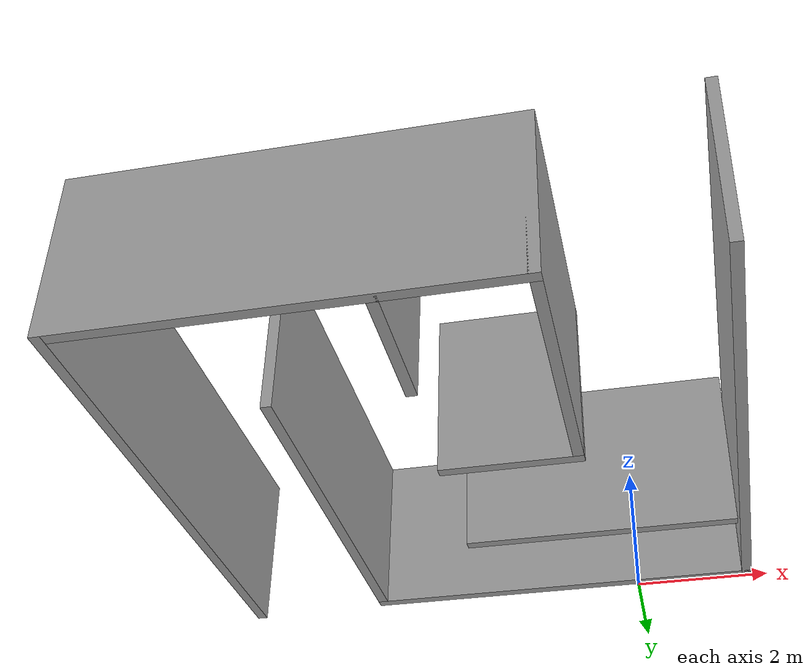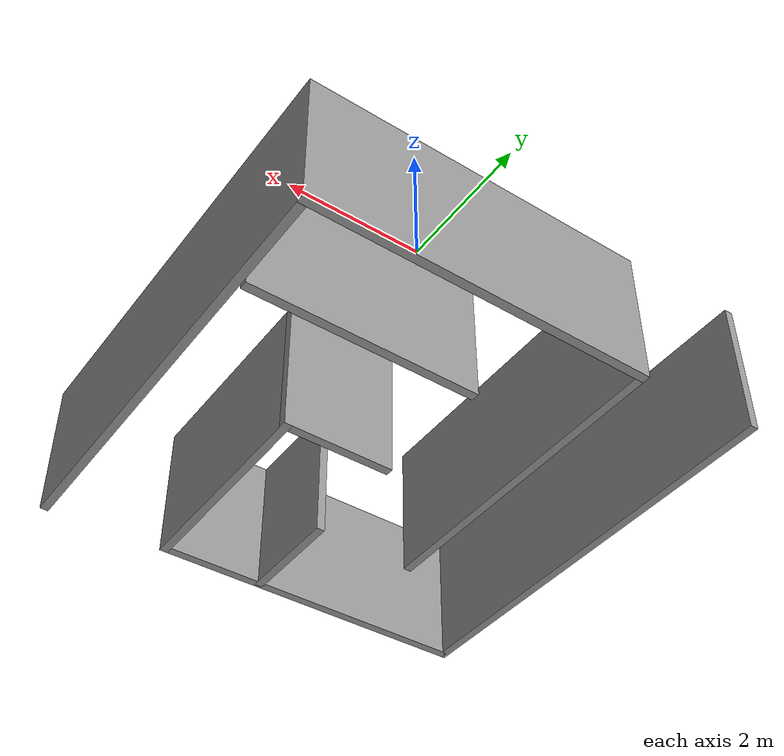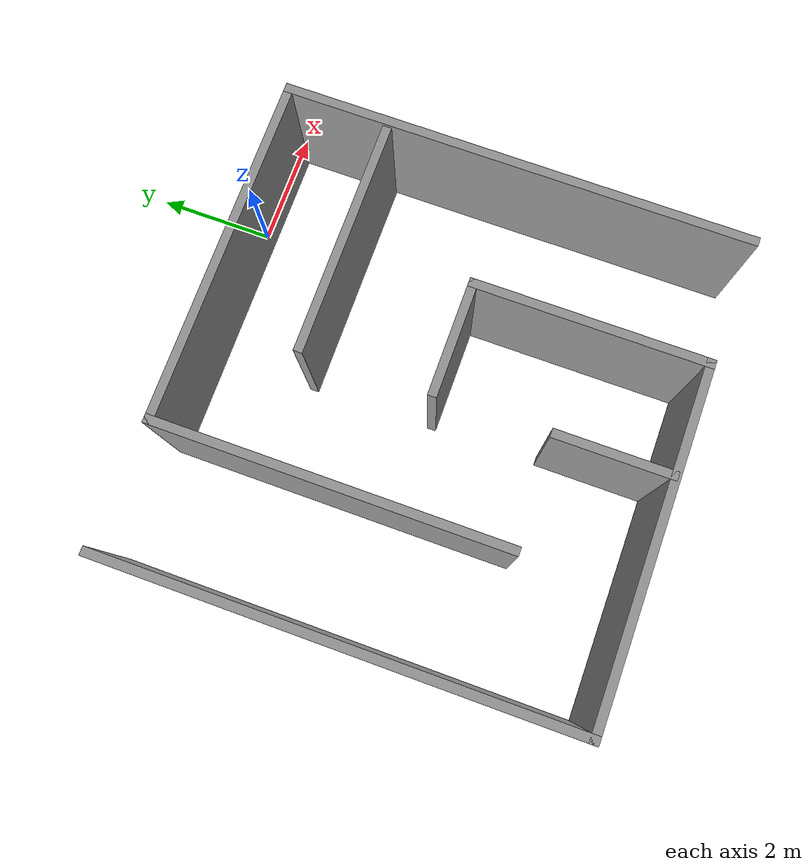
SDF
<?xml version='1.0'?>
<sdf version='1.6'>
  <model name='small_maze'>
    <pose frame=''>-2.30529 -3.98826 0 0 -0 0</pose>
    <link name='Wall_11'>
      <collision name='Wall_11_Collision'>
        <geometry>
          <box>
            <size>6 0.15 2.5</size>
          </box>
        </geometry>
        <pose frame=''>0 0 1.25 0 -0 0</pose>
      </collision>
      <visual name='Wall_11_Visual'>
        <pose frame=''>0 0 1.25 0 -0 0</pose>
        <geometry>
          <box>
            <size>6 0.15 2.5</size>
          </box>
        </geometry>
        <material>
          <script>
            <uri>file://media/materials/scripts/gazebo.material</uri>
            <name>Gazebo/Grey</name>
          </script>
          <ambient>1 1 1 1</ambient>
        </material>
        <meta>
          <layer>0</layer>
        </meta>
      </visual>
      <pose frame=''>-1.85079 0.957737 0 0 -0 1.5708</pose>
    </link>
    <link name='Wall_12'>
      <collision name='Wall_12_Collision'>
        <geometry>
          <box>
            <size>6 0.15 2.5</size>
          </box>
        </geometry>
        <pose frame=''>0 0 1.25 0 -0 0</pose>
      </collision>
      <visual name='Wall_12_Visual'>
        <pose frame=''>0 0 1.25 0 -0 0</pose>
        <geometry>
          <box>
            <size>6 0.15 2.5</size>
          </box>
        </geometry>
        <material>
          <script>
            <uri>file://media/materials/scripts/gazebo.material</uri>
            <name>Gazebo/Grey</name>
          </script>
          <ambient>1 1 1 1</ambient>
        </material>
        <meta>
          <layer>0</layer>
        </meta>
      </visual>
      <pose frame=''>1.07421 3.88274 0 0 -0 0</pose>
    </link>
    <link name='Wall_13'>
      <collision name='Wall_13_Collision'>
        <geometry>
          <box>
            <size>8 0.15 2.5</size>
          </box>
        </geometry>
        <pose frame=''>0 0 1.25 0 -0 0</pose>
      </collision>
      <visual name='Wall_13_Visual'>
        <pose frame=''>0 0 1.25 0 -0 0</pose>
        <geometry>
          <box>
            <size>8 0.15 2.5</size>
          </box>
        </geometry>
        <material>
          <script>
            <uri>file://media/materials/scripts/gazebo.material</uri>
            <name>Gazebo/Grey</name>
          </script>
          <ambient>1 1 1 1</ambient>
        </material>
        <meta>
          <layer>0</layer>
        </meta>
      </visual>
      <pose frame=''>3.99921 -0.042263 0 0 -0 -1.5708</pose>
    </link>
    <link name='Wall_15'>
      <collision name='Wall_15_Collision'>
        <geometry>
          <box>
            <size>4 0.15 2.5</size>
          </box>
        </geometry>
        <pose frame=''>0 0 1.25 0 -0 0</pose>
      </collision>
      <visual name='Wall_15_Visual'>
        <pose frame=''>0 0 1.25 0 -0 0</pose>
        <geometry>
          <box>
            <size>4 0.15 2.5</size>
          </box>
        </geometry>
        <material>
          <script>
            <uri>file://media/materials/scripts/gazebo.material</uri>
            <name>Gazebo/Grey</name>
          </script>
          <ambient>1 1 1 1</ambient>
        </material>
        <meta>
          <layer>0</layer>
        </meta>
      </visual>
      <pose frame=''>1.8936 2.14439 0 0 -0 0</pose>
    </link>
    <link name='Wall_4'>
      <collision name='Wall_4_Collision'>
        <geometry>
          <box>
            <size>8 0.15 2.5</size>
          </box>
        </geometry>
        <pose frame=''>0 0 1.25 0 -0 0</pose>
      </collision>
      <visual name='Wall_4_Visual'>
        <pose frame=''>0 0 1.25 0 -0 0</pose>
        <geometry>
          <box>
            <size>8 0.15 2.5</size>
          </box>
        </geometry>
        <material>
          <script>
            <uri>file://media/materials/scripts/gazebo.material</uri>
            <name>Gazebo/Grey</name>
          </script>
          <ambient>1 1 1 1</ambient>
        </material>
        <meta>
          <layer>0</layer>
        </meta>
      </visual>
      <pose frame=''>-3.99921 0.042263 0 0 -0 -1.5708</pose>
    </link>
    <link name='Wall_5'>
      <collision name='Wall_5_Collision'>
        <geometry>
          <box>
            <size>6 0.15 2.5</size>
          </box>
        </geometry>
        <pose frame=''>0 0 1.25 0 -0 0</pose>
      </collision>
      <visual name='Wall_5_Visual'>
        <pose frame=''>0 0 1.25 0 -0 0</pose>
        <geometry>
          <box>
            <size>6 0.15 2.5</size>
          </box>
        </geometry>
        <material>
          <script>
            <uri>file://media/materials/scripts/gazebo.material</uri>
            <name>Gazebo/Grey</name>
          </script>
          <ambient>1 1 1 1</ambient>
        </material>
        <meta>
          <layer>0</layer>
        </meta>
      </visual>
      <pose frame=''>-1.07421 -3.88274 0 0 -0 0</pose>
    </link>
    <link name='Wall_6'>
      <collision name='Wall_6_Collision'>
        <geometry>
          <box>
            <size>4 0.15 2.5</size>
          </box>
        </geometry>
        <pose frame=''>0 0 1.25 0 -0 0</pose>
      </collision>
      <visual name='Wall_6_Visual'>
        <pose frame=''>0 0 1.25 0 -0 0</pose>
        <geometry>
          <box>
            <size>4 0.15 2.5</size>
          </box>
        </geometry>
        <material>
          <script>
            <uri>file://media/materials/scripts/gazebo.material</uri>
            <name>Gazebo/Grey</name>
          </script>
          <ambient>1 1 1 1</ambient>
        </material>
        <meta>
          <layer>0</layer>
        </meta>
      </visual>
      <pose frame=''>1.85079 -1.95774 0 0 -0 1.5708</pose>
    </link>
    <link name='Wall_7'>
      <collision name='Wall_7_Collision'>
        <geometry>
          <box>
            <size>2 0.15 2.5</size>
          </box>
        </geometry>
        <pose frame=''>0 0 1.25 0 -0 0</pose>
      </collision>
      <visual name='Wall_7_Visual'>
        <pose frame=''>0 0 1.25 0 -0 0</pose>
        <geometry>
          <box>
            <size>2 0.15 2.5</size>
          </box>
        </geometry>
        <material>
          <script>
            <uri>file://media/materials/scripts/gazebo.material</uri>
            <name>Gazebo/Grey</name>
          </script>
          <ambient>1 1 1 1</ambient>
        </material>
        <meta>
          <layer>0</layer>
        </meta>
      </visual>
      <pose frame=''>0.925794 -0.032737 0 0 -0 3.14159</pose>
    </link>
    <link name='Wall_9'>
      <collision name='Wall_9_Collision'>
        <geometry>
          <box>
            <size>2 0.15 2.5</size>
          </box>
        </geometry>
        <pose frame=''>0 0 1.25 0 -0 0</pose>
      </collision>
      <visual name='Wall_9_Visual'>
        <pose frame=''>0 0 1.25 0 -0 0</pose>
        <geometry>
          <box>
            <size>2 0.15 2.5</size>
          </box>
        </geometry>
        <material>
          <script>
            <uri>file://media/materials/scripts/gazebo.material</uri>
            <name>Gazebo/Grey</name>
          </script>
          <ambient>1 1 1 1</ambient>
        </material>
        <meta>
          <layer>0</layer>
        </meta>
      </visual>
      <pose frame=''>0.002794 -2.91624 0 0 -0 1.5708</pose>
    </link>
    <static>1</static>
  </model>
</sdf>
